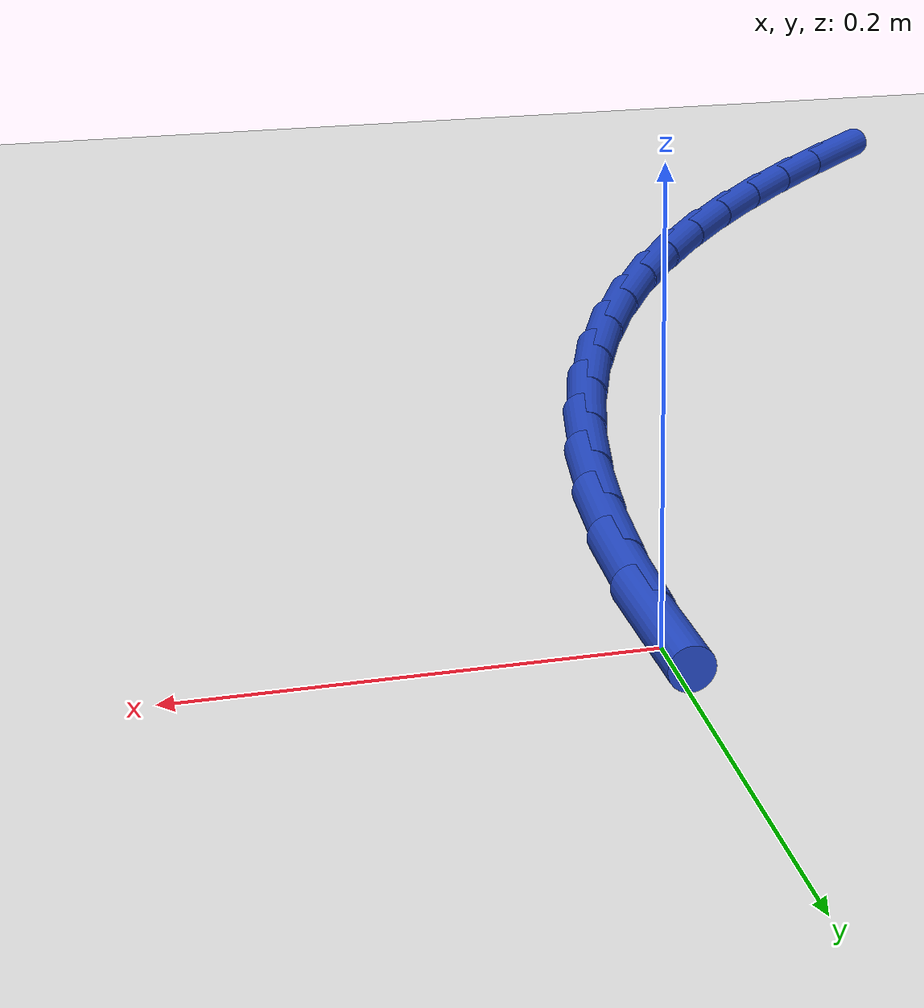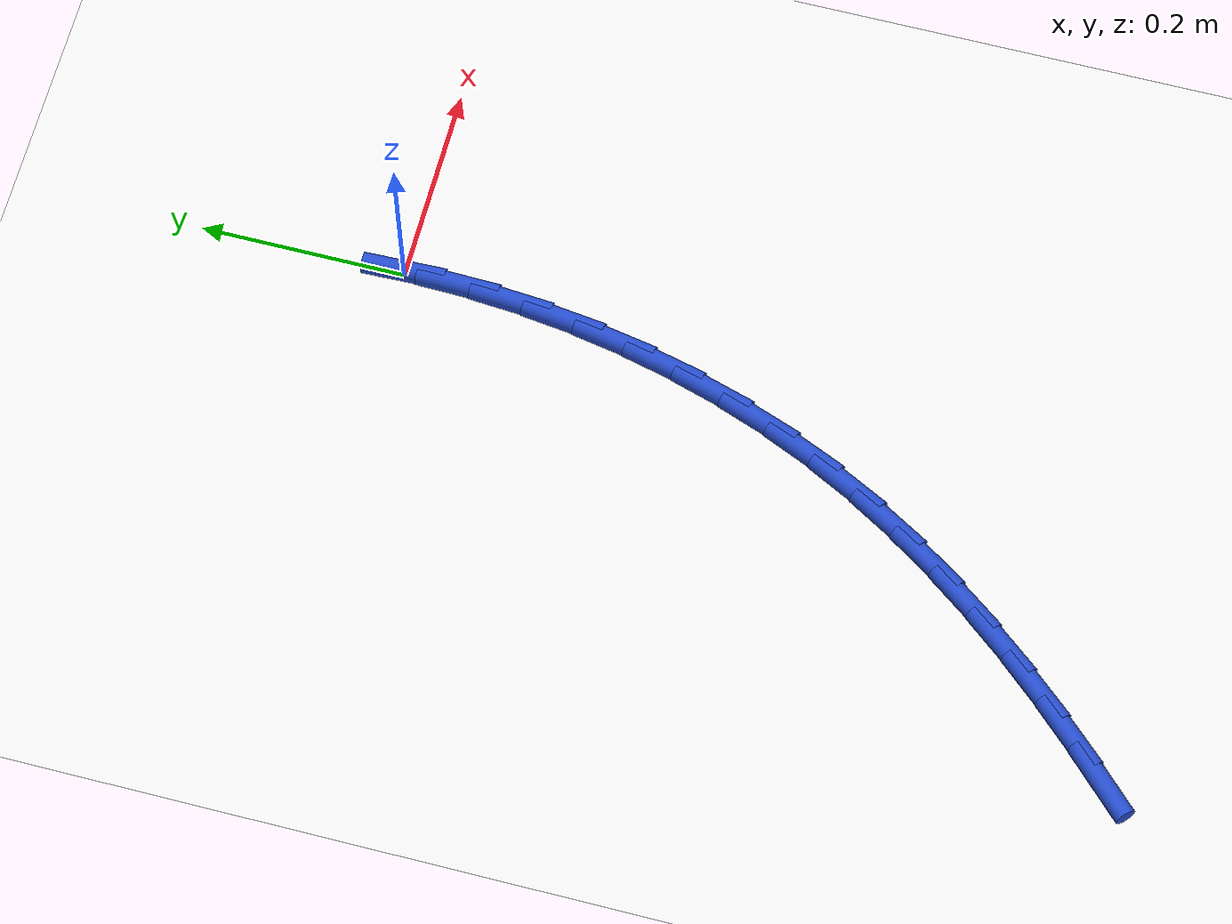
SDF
<sdf version="1.6">
 <world name="default">
  <model name="ground_plane">
   <static>1</static>
   <link name="link">
    <collision name="collision">
     <geometry><plane><normal>0 0 1</normal><size>100 100</size></plane></geometry>
     <surface><friction><ode><mu>100</mu><mu2>50</mu2></ode></friction></surface>
    </collision>
    <visual name="visual">
     <cast_shadows>0</cast_shadows>
     <geometry><plane><normal>0 0 1</normal><size>100 100</size></plane></geometry>
     <material>
      <script><uri>file://media/materials/scripts/gazebo.material</uri><name>Gazebo/WhiteGlow</name></script>
     </material>
    </visual>
   </link>
  </model>
  <model name="line">
   <link name="link_0">
    <pose>1.734723475976807e-18 -4.163336342344337e-17 0.01 0 1.57 -1.5426971802619949</pose>
    <collision name="collision">
     <geometry><cylinder><radius>0.01</radius><length>0.08</length></cylinder></geometry>
    </collision>
    <visual name="visual">
     <material>
      <script><name>Gazebo/Blue</name><uri>file://media/materials/scripts/gazebo.material</uri></script>
     </material>
     <geometry><cylinder><radius>0.01</radius><length>0.08</length></cylinder></geometry>
    </visual>
   </link>
   <link name="link_124">
    <pose>-0.33787409026047477 -0.7448998498539563 0.01 0 1.57 0.7895249657789377</pose>
    <collision name="collision">
     <geometry><cylinder><radius>0.01</radius><length>0.08</length></cylinder></geometry>
    </collision>
    <visual name="visual">
     <material>
      <script><name>Gazebo/Blue</name><uri>file://media/materials/scripts/gazebo.material</uri></script>
     </material>
     <geometry><cylinder><radius>0.01</radius><length>0.08</length></cylinder></geometry>
    </visual>
   </link>
   <link name="link_125">
    <pose>-0.30072484625978363 -0.7074427183372779 0.01 0 1.57 0.8201912098448775</pose>
    <collision name="collision">
     <geometry><cylinder><radius>0.01</radius><length>0.08</length></cylinder></geometry>
    </collision>
    <visual name="visual">
     <material>
      <script><name>Gazebo/Blue</name><uri>file://media/materials/scripts/gazebo.material</uri></script>
     </material>
     <geometry><cylinder><radius>0.01</radius><length>0.08</length></cylinder></geometry>
    </visual>
   </link>
   <link name="link_126">
    <pose>-0.2647097330261134 -0.6688300282199136 0.01 0 1.57 0.8552247031401776</pose>
    <collision name="collision">
     <geometry><cylinder><radius>0.01</radius><length>0.08</length></cylinder></geometry>
    </collision>
    <visual name="visual">
     <material>
      <script><name>Gazebo/Blue</name><uri>file://media/materials/scripts/gazebo.material</uri></script>
     </material>
     <geometry><cylinder><radius>0.01</radius><length>0.08</length></cylinder></geometry>
    </visual>
   </link>
   <link name="link_127">
    <pose>-0.2300959636241501 -0.6290103662427216 0.01 0 1.57 0.8948278951657131</pose>
    <collision name="collision">
     <geometry><cylinder><radius>0.01</radius><length>0.08</length></cylinder></geometry>
    </collision>
    <visual name="visual">
     <material>
      <script><name>Gazebo/Blue</name><uri>file://media/materials/scripts/gazebo.material</uri></script>
     </material>
     <geometry><cylinder><radius>0.01</radius><length>0.08</length></cylinder></geometry>
    </visual>
   </link>
   <link name="link_128">
    <pose>-0.19715075111857855 -0.5879323191465585 0.01 0 1.57 0.9391987219530682</pose>
    <collision name="collision">
     <geometry><cylinder><radius>0.01</radius><length>0.08</length></cylinder></geometry>
    </collision>
    <visual name="visual">
     <material>
      <script><name>Gazebo/Blue</name><uri>file://media/materials/scripts/gazebo.material</uri></script>
     </material>
     <geometry><cylinder><radius>0.01</radius><length>0.08</length></cylinder></geometry>
    </visual>
   </link>
   <link name="link_129">
    <pose>-0.16614130857408374 -0.5455444736722811 0.01 0 1.57 0.9885054855034371</pose>
    <collision name="collision">
     <geometry><cylinder><radius>0.01</radius><length>0.08</length></cylinder></geometry>
    </collision>
    <visual name="visual">
     <material>
      <script><name>Gazebo/Blue</name><uri>file://media/materials/scripts/gazebo.material</uri></script>
     </material>
     <geometry><cylinder><radius>0.01</radius><length>0.08</length></cylinder></geometry>
    </visual>
   </link>
   <link name="link_130">
    <pose>-0.1373348490553508 -0.5017954165607463 0.01 0 1.57 1.0428549001363165</pose>
    <collision name="collision">
     <geometry><cylinder><radius>0.01</radius><length>0.08</length></cylinder></geometry>
    </collision>
    <visual name="visual">
     <material>
      <script><name>Gazebo/Blue</name><uri>file://media/materials/scripts/gazebo.material</uri></script>
     </material>
     <geometry><cylinder><radius>0.01</radius><length>0.08</length></cylinder></geometry>
    </visual>
   </link>
   <link name="link_131">
    <pose>-0.11099858562706458 -0.45663373455281075 0.01 0 1.57 1.1021071987758888</pose>
    <collision name="collision">
     <geometry><cylinder><radius>0.01</radius><length>0.08</length></cylinder></geometry>
    </collision>
    <visual name="visual">
     <material>
      <script><name>Gazebo/Blue</name><uri>file://media/materials/scripts/gazebo.material</uri></script>
     </material>
     <geometry><cylinder><radius>0.01</radius><length>0.08</length></cylinder></geometry>
    </visual>
   </link>
   <link name="link_132">
    <pose>-0.08739350837451972 -0.41001267242730344 0.01 0 1.57 1.1629349849137394</pose>
    <collision name="collision">
     <geometry><cylinder><radius>0.01</radius><length>0.08</length></cylinder></geometry>
    </collision>
    <visual name="visual">
     <material>
      <script><name>Gazebo/Blue</name><uri>file://media/materials/scripts/gazebo.material</uri></script>
     </material>
     <geometry><cylinder><radius>0.01</radius><length>0.08</length></cylinder></geometry>
    </visual>
   </link>
   <link name="link_133">
    <pose>-0.06664276614121066 -0.36198865218699944 0.01 0 1.57 1.2221681736704744</pose>
    <collision name="collision">
     <geometry><cylinder><radius>0.01</radius><length>0.08</length></cylinder></geometry>
    </collision>
    <visual name="visual">
     <material>
      <script><name>Gazebo/Blue</name><uri>file://media/materials/scripts/gazebo.material</uri></script>
     </material>
     <geometry><cylinder><radius>0.01</radius><length>0.08</length></cylinder></geometry>
    </visual>
   </link>
   <link name="link_134">
    <pose>-0.048734541452914136 -0.3127191211142407 0.01 0 1.57 1.2797556816687818</pose>
    <collision name="collision">
     <geometry><cylinder><radius>0.01</radius><length>0.08</length></cylinder></geometry>
    </collision>
    <visual name="visual">
     <material>
      <script><name>Gazebo/Blue</name><uri>file://media/materials/scripts/gazebo.material</uri></script>
     </material>
     <geometry><cylinder><radius>0.01</radius><length>0.08</length></cylinder></geometry>
    </visual>
   </link>
   <link name="link_135">
    <pose>-0.03365136892090855 -0.262365754080524 0.01 0 1.57 1.3358146076376334</pose>
    <collision name="collision">
     <geometry><cylinder><radius>0.01</radius><length>0.08</length></cylinder></geometry>
    </collision>
    <visual name="visual">
     <material>
      <script><name>Gazebo/Blue</name><uri>file://media/materials/scripts/gazebo.material</uri></script>
     </material>
     <geometry><cylinder><radius>0.01</radius><length>0.08</length></cylinder></geometry>
    </visual>
   </link>
   <link name="link_136">
    <pose>-0.02137578315647295 -0.21109022595734833 0.01 0 1.57 1.390489505289171</pose>
    <collision name="collision">
     <geometry><cylinder><radius>0.01</radius><length>0.08</length></cylinder></geometry>
    </collision>
    <visual name="visual">
     <material>
      <script><name>Gazebo/Blue</name><uri>file://media/materials/scripts/gazebo.material</uri></script>
     </material>
     <geometry><cylinder><radius>0.01</radius><length>0.08</length></cylinder></geometry>
    </visual>
   </link>
   <link name="link_137">
    <pose>-0.011890318770885703 -0.1590542116162107 0.01 0 1.57 1.4439456317156112</pose>
    <collision name="collision">
     <geometry><cylinder><radius>0.01</radius><length>0.08</length></cylinder></geometry>
    </collision>
    <visual name="visual">
     <material>
      <script><name>Gazebo/Blue</name><uri>file://media/materials/scripts/gazebo.material</uri></script>
     </material>
     <geometry><cylinder><radius>0.01</radius><length>0.08</length></cylinder></geometry>
    </visual>
   </link>
   <link name="link_138">
    <pose>-0.005177510375425388 -0.10641938592860842 0.01 0 1.57 1.4963633085012888</pose>
    <collision name="collision">
     <geometry><cylinder><radius>0.01</radius><length>0.08</length></cylinder></geometry>
    </collision>
    <visual name="visual">
     <material>
      <script><name>Gazebo/Blue</name><uri>file://media/materials/scripts/gazebo.material</uri></script>
     </material>
     <geometry><cylinder><radius>0.01</radius><length>0.08</length></cylinder></geometry>
    </visual>
   </link>
   <link name="link_139">
    <pose>-0.0012198925813706133 -0.05334742376603928 0.01 0 1.57 1.5479333666773778</pose>
    <collision name="collision">
     <geometry><cylinder><radius>0.01</radius><length>0.08</length></cylinder></geometry>
    </collision>
    <visual name="visual">
     <material>
      <script><name>Gazebo/Blue</name><uri>file://media/materials/scripts/gazebo.material</uri></script>
     </material>
     <geometry><cylinder><radius>0.01</radius><length>0.08</length></cylinder></geometry>
    </visual>
   </link>
  </model>
 </world>
</sdf>
